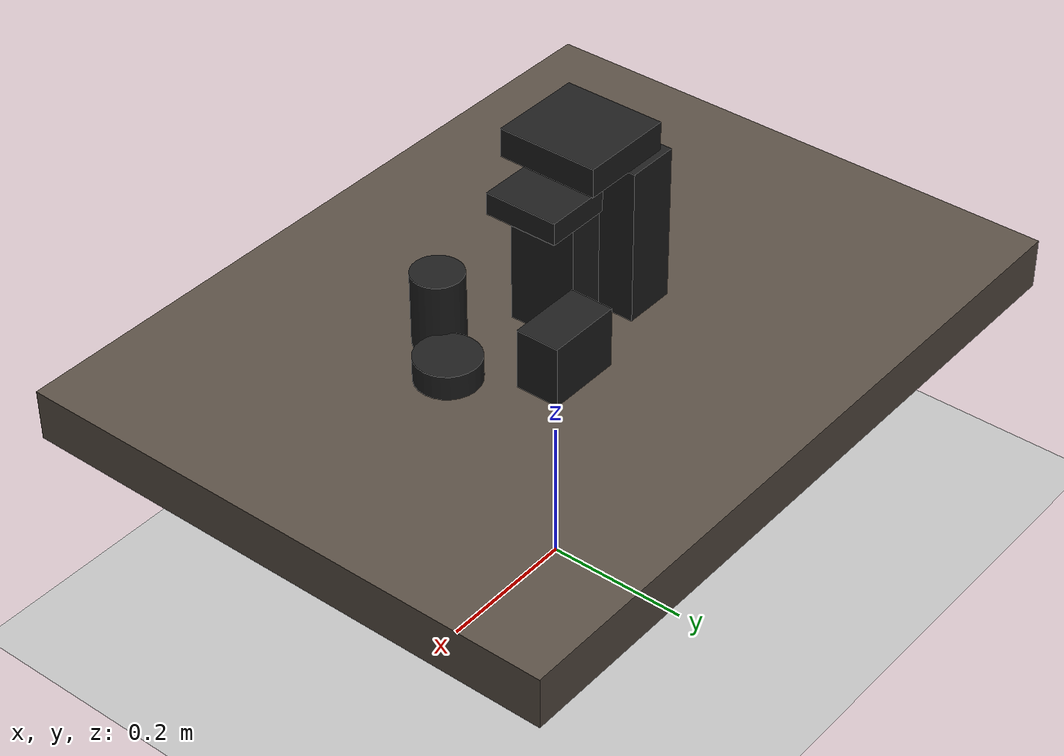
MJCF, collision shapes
<mujoco model="ycb_mesh_stacked">
  <compiler angle="radian" autolimits="true"/>

  <option timestep="0.002" gravity="0 0 -9.81" integrator="RK4"/>
  <visual>
    <global offwidth="1280" offheight="900"/>
  </visual>

  <default>
    <joint damping="0.01"/>
    <geom condim="4" friction="1.05 0.006 0.0001" solref="0.01 1" solimp="0.9 0.95 0.001"/>
  </default>

  <asset>
    <texture name="grid" type="2d" builtin="checker" width="512" height="512" rgb1="0.82 0.82 0.82" rgb2="0.68 0.68 0.68"/>
    <material name="floor_mat" texture="grid" texrepeat="2 2" reflectance="0.15"/>
    <material name="table_mat" rgba="0.35 0.31 0.27 1"/>
    <mesh name="mesh_003_cracker_box" file="../objects/ycb/003_cracker_box/google_16k/textured.obj" scale="1.000000000 1.000000000 1.000000000"/>
    <texture name="tex_003_cracker_box" type="2d" file="../objects/ycb/003_cracker_box/google_16k/texture_map.png"/>
    <material name="mat_003_cracker_box" texture="tex_003_cracker_box" specular="0.25" shininess="0.35"/>
    <mesh name="mesh_004_sugar_box" file="../objects/ycb/004_sugar_box/google_16k/textured.obj" scale="1.000000000 1.000000000 1.000000000"/>
    <texture name="tex_004_sugar_box" type="2d" file="../objects/ycb/004_sugar_box/google_16k/texture_map.png"/>
    <material name="mat_004_sugar_box" texture="tex_004_sugar_box" specular="0.25" shininess="0.35"/>
    <mesh name="mesh_008_pudding_box" file="../objects/ycb/008_pudding_box/google_16k/textured.obj" scale="1.000000000 1.000000000 1.000000000"/>
    <texture name="tex_008_pudding_box" type="2d" file="../objects/ycb/008_pudding_box/google_16k/texture_map.png"/>
    <material name="mat_008_pudding_box" texture="tex_008_pudding_box" specular="0.25" shininess="0.35"/>
    <mesh name="mesh_009_gelatin_box" file="../objects/ycb/009_gelatin_box/google_16k/textured.obj" scale="1.000000000 1.000000000 1.000000000"/>
    <texture name="tex_009_gelatin_box" type="2d" file="../objects/ycb/009_gelatin_box/google_16k/texture_map.png"/>
    <material name="mat_009_gelatin_box" texture="tex_009_gelatin_box" specular="0.25" shininess="0.35"/>
    <mesh name="mesh_005_tomato_soup_can" file="../objects/ycb/005_tomato_soup_can/google_16k/textured.obj" scale="1.000000000 1.000000000 1.000000000"/>
    <texture name="tex_005_tomato_soup_can" type="2d" file="../objects/ycb/005_tomato_soup_can/google_16k/texture_map.png"/>
    <material name="mat_005_tomato_soup_can" texture="tex_005_tomato_soup_can" specular="0.25" shininess="0.35"/>
    <mesh name="mesh_007_tuna_fish_can" file="../objects/ycb/007_tuna_fish_can/google_16k/textured.obj" scale="1.000000000 1.000000000 1.000000000"/>
    <texture name="tex_007_tuna_fish_can" type="2d" file="../objects/ycb/007_tuna_fish_can/google_16k/texture_map.png"/>
    <material name="mat_007_tuna_fish_can" texture="tex_007_tuna_fish_can" specular="0.25" shininess="0.35"/>
    <mesh name="mesh_061_foam_brick" file="../objects/ycb/061_foam_brick/google_16k/textured.obj" scale="1.000000000 1.000000000 1.000000000"/>
    <texture name="tex_061_foam_brick" type="2d" file="../objects/ycb/061_foam_brick/google_16k/texture_map.png"/>
    <material name="mat_061_foam_brick" texture="tex_061_foam_brick" specular="0.25" shininess="0.35"/>
    <mesh name="mesh_010_potted_meat_can" file="../objects/ycb/010_potted_meat_can/google_16k/textured.obj" scale="1.000000000 1.000000000 1.000000000"/>
    <texture name="tex_010_potted_meat_can" type="2d" file="../objects/ycb/010_potted_meat_can/google_16k/texture_map.png"/>
    <material name="mat_010_potted_meat_can" texture="tex_010_potted_meat_can" specular="0.25" shininess="0.35"/>
  </asset>

  <worldbody>
    <light name="key_light" pos="0.25 -0.55 1.2" dir="-0.2 0.45 -1"/>
    <camera name="overview" mode="targetbody" target="table" pos="0.82 -0.92 1.08" fovy="62"/>
    <camera name="topdown" mode="targetbody" target="table" pos="0.00 0.00 1.45" fovy="54"/>
    <camera name="front" mode="targetbody" target="table" pos="0.00 -1.20 0.72" fovy="55"/>
    <geom name="floor" type="plane" size="1.2 1.2 0.02" material="floor_mat"/>

    <body name="table" pos="0 0 0.35">
      <geom name="table_top" type="box" size="0.50 0.38 0.035" material="table_mat"/>
    </body>

    <body name="obj_003_cracker_box" pos="-0.080000 0.000000 0.492719">
      <freejoint/>
      <geom name="obj_003_cracker_box_geom" type="box" size="0.035900 0.082018 0.106718" mass="0.411000" rgba="0.12 0.12 0.12 0.0" group="3"/>
      <geom name="obj_003_cracker_box_visual" type="mesh" mesh="mesh_003_cracker_box" material="mat_003_cracker_box" pos="0.012885 0.014142 -0.103475" quat="1.00000000 0.00000000 0.00000000 0.00000000" contype="0" conaffinity="0" group="2"/>
    </body>

    <body name="obj_004_sugar_box" pos="0.015000 0.010000 0.474008">
      <freejoint/>
      <geom name="obj_004_sugar_box_geom" type="box" size="0.024748 0.047081 0.088008" mass="0.514000" rgba="0.12 0.12 0.12 0.0" group="3"/>
      <geom name="obj_004_sugar_box_visual" type="mesh" mesh="mesh_004_sugar_box" material="mat_004_sugar_box" pos="-0.007467 -0.016712 -0.088039" quat="0.00000000 0.00000000 0.00000000 1.00000000" contype="0" conaffinity="0" group="2"/>
    </body>

    <body name="obj_008_pudding_box" pos="-0.040000 0.005000 0.619881">
      <freejoint/>
      <geom name="obj_008_pudding_box_geom" type="box" size="0.064378 0.068969 0.019444" mass="0.187000" rgba="0.12 0.12 0.12 0.0" group="3"/>
      <geom name="obj_008_pudding_box_visual" type="mesh" mesh="mesh_008_pudding_box" material="mat_008_pudding_box" pos="0.019123 -0.000505 -0.018948" quat="0.70710678 0.00000000 0.00000000 0.70710678" contype="0" conaffinity="0" group="2"/>
    </body>

    <body name="obj_009_gelatin_box" pos="0.040000 0.015000 0.578052">
      <freejoint/>
      <geom name="obj_009_gelatin_box_geom" type="box" size="0.044702 0.050554 0.015037" mass="0.097000" rgba="0.12 0.12 0.12 0.0" group="3"/>
      <geom name="obj_009_gelatin_box_visual" type="mesh" mesh="mesh_009_gelatin_box" material="mat_009_gelatin_box" pos="0.022775 0.008245 -0.014492" quat="1.00000000 0.00000000 0.00000000 0.00000000" contype="0" conaffinity="0" group="2"/>
    </body>

    <body name="obj_005_tomato_soup_can" pos="0.130000 -0.075000 0.436928">
      <freejoint/>
      <geom name="obj_005_tomato_soup_can_geom" type="cylinder" size="0.033913 0.050928" mass="0.349000" rgba="0.12 0.12 0.12 0.0" group="3"/>
      <geom name="obj_005_tomato_soup_can_visual" type="mesh" mesh="mesh_005_tomato_soup_can" material="mat_005_tomato_soup_can" pos="0.009169 -0.084017 -0.051006" quat="1.00000000 0.00000000 0.00000000 0.00000000" contype="0" conaffinity="0" group="2"/>
    </body>

    <body name="obj_007_tuna_fish_can" pos="0.178000 -0.020000 0.402769">
      <freejoint/>
      <geom name="obj_007_tuna_fish_can_geom" type="cylinder" size="0.042775 0.016769" mass="0.171000" rgba="0.12 0.12 0.12 0.0" group="3"/>
      <geom name="obj_007_tuna_fish_can_visual" type="mesh" mesh="mesh_007_tuna_fish_can" material="mat_007_tuna_fish_can" pos="0.026049 0.022132 -0.013551" quat="1.00000000 0.00000000 0.00000000 0.00000000" contype="0" conaffinity="0" group="2"/>
    </body>

    <body name="obj_061_foam_brick" pos="-0.150000 -0.090000 0.411597">
      <freejoint/>
      <geom name="obj_061_foam_brick_geom" type="box" size="0.038937 0.026280 0.025597" mass="0.028000" rgba="0.12 0.12 0.12 0.0" group="3"/>
      <geom name="obj_061_foam_brick_visual" type="mesh" mesh="mesh_061_foam_brick" material="mat_061_foam_brick" pos="-0.017200 -0.018261 -0.025251" quat="0.70710678 0.00000000 0.00000000 -0.70710678" contype="0" conaffinity="0" group="2"/>
    </body>

    <body name="obj_010_potted_meat_can" pos="0.090000 0.085000 0.427772">
      <freejoint/>
      <geom name="obj_010_potted_meat_can_geom" type="box" size="0.051042 0.030052 0.041771" mass="0.370000" rgba="0.12 0.12 0.12 0.0" group="3"/>
      <geom name="obj_010_potted_meat_can_visual" type="mesh" mesh="mesh_010_potted_meat_can" material="mat_010_potted_meat_can" pos="0.032785 0.026552 -0.038583" quat="1.00000000 0.00000000 0.00000000 0.00000000" contype="0" conaffinity="0" group="2"/>
    </body>

  </worldbody>
</mujoco>
